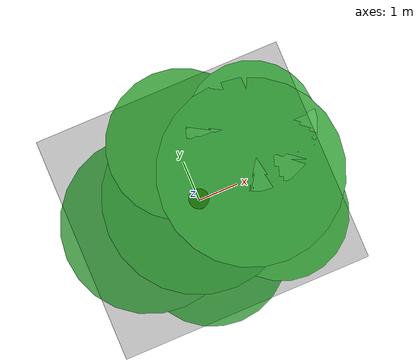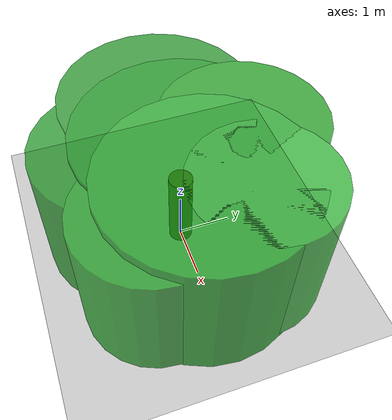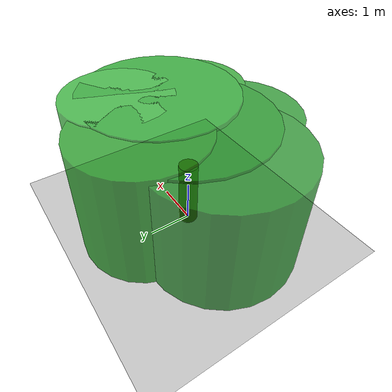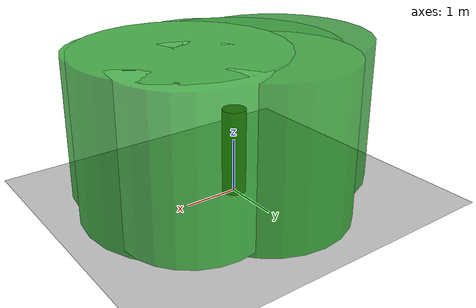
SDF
<?xml version="1.0"?>
<sdf version="1.6">
  <world name="single_canopy_world">
    <!--
      Gazebo 单树树冠世界。

      多个相互重叠的竖直圆柱共同形成约 6.0 m × 5.0 m 的不规则树冠
      俯视轮廓。这样既保留真实树冠的局部凹凸，又能让 Gazebo ray
      传感器获得稳定碰撞边界，适合验证雷达局部轮廓跟随控制。
    -->
    <include>
      <uri>model://ground_plane</uri>
    </include>
    <include>
      <uri>model://sun</uri>
    </include>

    <model name="irregular_lychee_canopy">
      <static>true</static>
      <pose>0 0 0 0 0 0</pose>
      <link name="canopy_link">
        <!-- 中央主体。所有圆柱从接近地面延伸到约 2.8 m 高。 -->
        <visual name="center_visual">
          <pose>0 0 1.45 0 0 0</pose>
          <geometry><cylinder><radius>1.85</radius><length>2.70</length></cylinder></geometry>
          <material><ambient>0.02 0.38 0.03 0.75</ambient><diffuse>0.02 0.55 0.04 0.75</diffuse></material>
        </visual>
        <collision name="center_collision">
          <pose>0 0 1.45 0 0 0</pose>
          <geometry><cylinder><radius>1.85</radius><length>2.70</length></cylinder></geometry>
        </collision>

        <!-- 东西方向枝叶，使总体宽度接近 6 m。东侧最外缘约 x=2.90 m。 -->
        <visual name="east_visual">
          <pose>1.10 0.05 1.50 0 0 0</pose>
          <geometry><cylinder><radius>1.80</radius><length>2.80</length></cylinder></geometry>
          <material><ambient>0.02 0.42 0.04 0.72</ambient><diffuse>0.03 0.62 0.05 0.72</diffuse></material>
        </visual>
        <collision name="east_collision">
          <pose>1.10 0.05 1.50 0 0 0</pose>
          <geometry><cylinder><radius>1.80</radius><length>2.80</length></cylinder></geometry>
        </collision>
        <visual name="west_visual">
          <pose>-1.05 -0.10 1.42 0 0 0</pose>
          <geometry><cylinder><radius>1.72</radius><length>2.64</length></cylinder></geometry>
          <material><ambient>0.01 0.35 0.03 0.70</ambient><diffuse>0.02 0.52 0.04 0.70</diffuse></material>
        </visual>
        <collision name="west_collision">
          <pose>-1.05 -0.10 1.42 0 0 0</pose>
          <geometry><cylinder><radius>1.72</radius><length>2.64</length></cylinder></geometry>
        </collision>

        <!-- 南北方向枝叶，使总体高度方向的俯视尺寸接近 5 m。 -->
        <visual name="north_visual">
          <pose>0.10 1.05 1.48 0 0 0</pose>
          <geometry><cylinder><radius>1.45</radius><length>2.76</length></cylinder></geometry>
          <material><ambient>0.02 0.40 0.02 0.72</ambient><diffuse>0.03 0.58 0.03 0.72</diffuse></material>
        </visual>
        <collision name="north_collision">
          <pose>0.10 1.05 1.48 0 0 0</pose>
          <geometry><cylinder><radius>1.45</radius><length>2.76</length></cylinder></geometry>
        </collision>
        <visual name="south_visual">
          <pose>-0.15 -1.05 1.38 0 0 0</pose>
          <geometry><cylinder><radius>1.45</radius><length>2.56</length></cylinder></geometry>
          <material><ambient>0.01 0.37 0.03 0.70</ambient><diffuse>0.02 0.54 0.04 0.70</diffuse></material>
        </visual>
        <collision name="south_collision">
          <pose>-0.15 -1.05 1.38 0 0 0</pose>
          <geometry><cylinder><radius>1.45</radius><length>2.56</length></cylinder></geometry>
        </collision>

        <!-- 两个较小叶簇增加东侧局部曲率变化。 -->
        <visual name="northeast_visual">
          <pose>1.45 0.85 1.55 0 0 0</pose>
          <geometry><cylinder><radius>1.25</radius><length>2.70</length></cylinder></geometry>
          <material><ambient>0.03 0.46 0.04 0.68</ambient><diffuse>0.04 0.66 0.06 0.68</diffuse></material>
        </visual>
        <collision name="northeast_collision">
          <pose>1.45 0.85 1.55 0 0 0</pose>
          <geometry><cylinder><radius>1.25</radius><length>2.70</length></cylinder></geometry>
        </collision>
        <visual name="southeast_visual">
          <pose>1.35 -0.90 1.43 0 0 0</pose>
          <geometry><cylinder><radius>1.30</radius><length>2.56</length></cylinder></geometry>
          <material><ambient>0.02 0.43 0.03 0.70</ambient><diffuse>0.03 0.61 0.04 0.70</diffuse></material>
        </visual>
        <collision name="southeast_collision">
          <pose>1.35 -0.90 1.43 0 0 0</pose>
          <geometry><cylinder><radius>1.30</radius><length>2.56</length></cylinder></geometry>
        </collision>

        <!-- 树干主要用于视觉识别；树冠碰撞轮廓仍是雷达控制目标。 -->
        <visual name="trunk_visual">
          <pose>0 0 0.80 0 0 0</pose>
          <geometry><cylinder><radius>0.22</radius><length>1.60</length></cylinder></geometry>
          <material><ambient>0.25 0.12 0.04 1</ambient><diffuse>0.38 0.20 0.07 1</diffuse></material>
        </visual>
      </link>
    </model>
  </world>
</sdf>
